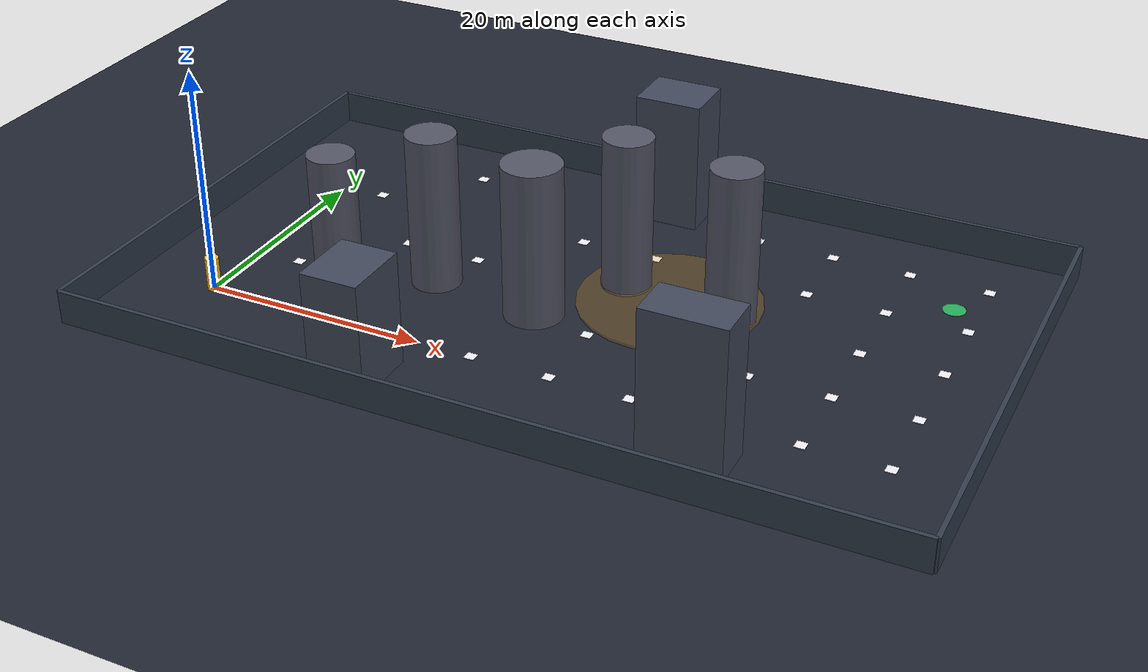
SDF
<?xml version="1.0" ?>
<!-- GENERATED by tools/gen_maps.py -- do not edit by hand. -->
<sdf version="1.6">
  <world name="demo">
    <gravity>0 0 -9.81</gravity>
    <scene><ambient>0.5 0.52 0.55 1</ambient><background>0.62 0.66 0.72 1</background><shadows>true</shadows>
      <fog><color>0.62 0.66 0.72 1</color><type>linear</type><start>16</start><end>90</end><density>0.02</density></fog></scene>
    <light name="sun" type="directional"><cast_shadows>true</cast_shadows><pose>0 0 40 0 0 0</pose>
      <diffuse>0.9 0.9 0.9 1</diffuse><specular>0.2 0.2 0.2 1</specular><direction>-0.4 0.3 -0.9</direction></light>
    <model name="ground"><static>true</static><link name="link">
      <collision name="c"><geometry><plane><normal>0 0 1</normal><size>400 400</size></plane></geometry></collision>
      <visual name="v"><geometry><plane><normal>0 0 1</normal><size>400 400</size></plane></geometry>
      <material><ambient>0.13 0.15 0.2</ambient><diffuse>0.13 0.15 0.2</diffuse></material></visual></link></model>
    <model name="wall_s"><static>true</static><pose>29.000 -10.000 1.500 0 0 0</pose><link name="l"><collision name="c"><geometry><box><size>74.0 0.4 3.0</size></box></geometry></collision><visual name="v"><geometry><box><size>74.0 0.4 3.0</size></box></geometry><material><ambient>0.2 0.24 0.3 1</ambient><diffuse>0.2 0.24 0.3 1</diffuse></material></visual></link></model>
    <model name="wall_n"><static>true</static><pose>29.000 34.000 1.500 0 0 0</pose><link name="l"><collision name="c"><geometry><box><size>74.0 0.4 3.0</size></box></geometry></collision><visual name="v"><geometry><box><size>74.0 0.4 3.0</size></box></geometry><material><ambient>0.2 0.24 0.3 1</ambient><diffuse>0.2 0.24 0.3 1</diffuse></material></visual></link></model>
    <model name="wall_w"><static>true</static><pose>-8.000 12.000 1.500 0 0 0</pose><link name="l"><collision name="c"><geometry><box><size>0.4 44.0 3.0</size></box></geometry></collision><visual name="v"><geometry><box><size>0.4 44.0 3.0</size></box></geometry><material><ambient>0.2 0.24 0.3 1</ambient><diffuse>0.2 0.24 0.3 1</diffuse></material></visual></link></model>
    <model name="wall_e"><static>true</static><pose>66.000 12.000 1.500 0 0 0</pose><link name="l"><collision name="c"><geometry><box><size>0.4 44.0 3.0</size></box></geometry></collision><visual name="v"><geometry><box><size>0.4 44.0 3.0</size></box></geometry><material><ambient>0.2 0.24 0.3 1</ambient><diffuse>0.2 0.24 0.3 1</diffuse></material></visual></link></model>
    <model name="hard_patch"><static>true</static><pose>35.960 14.880 0.03 0 0 0</pose><link name="l"><visual name="v"><geometry><cylinder><radius>8.0</radius><length>0.3</length></cylinder></geometry><material><ambient>0.96 0.62 0.04 0.22</ambient><diffuse>0.96 0.62 0.04 0.22</diffuse></material></visual></link></model>
    <model name="tower0"><static>true</static><pose>41.518 14.582 7.000 0 0 0</pose><link name="l"><collision name="c"><geometry><cylinder><radius>2.2</radius><length>14.0</length></cylinder></geometry></collision><visual name="v"><geometry><cylinder><radius>2.2</radius><length>14.0</length></cylinder></geometry><material><ambient>0.33 0.34 0.4 1</ambient><diffuse>0.33 0.34 0.4 1</diffuse></material></visual></link></model>
    <model name="tower1"><static>true</static><pose>31.409 16.027 7.000 0 0 0</pose><link name="l"><collision name="c"><geometry><cylinder><radius>2.2</radius><length>14.0</length></cylinder></geometry></collision><visual name="v"><geometry><cylinder><radius>2.2</radius><length>14.0</length></cylinder></geometry><material><ambient>0.33 0.34 0.4 1</ambient><diffuse>0.33 0.34 0.4 1</diffuse></material></visual></link></model>
    <model name="tower2"><static>true</static><pose>26.514 8.158 7.000 0 0 0</pose><link name="l"><collision name="c"><geometry><cylinder><radius>2.6</radius><length>14.0</length></cylinder></geometry></collision><visual name="v"><geometry><cylinder><radius>2.6</radius><length>14.0</length></cylinder></geometry><material><ambient>0.33 0.34 0.4 1</ambient><diffuse>0.33 0.34 0.4 1</diffuse></material></visual></link></model>
    <model name="tower3"><static>true</static><pose>16.482 9.418 7.000 0 0 0</pose><link name="l"><collision name="c"><geometry><cylinder><radius>2.2</radius><length>14.0</length></cylinder></geometry></collision><visual name="v"><geometry><cylinder><radius>2.2</radius><length>14.0</length></cylinder></geometry><material><ambient>0.33 0.34 0.4 1</ambient><diffuse>0.33 0.34 0.4 1</diffuse></material></visual></link></model>
    <model name="tower4"><static>true</static><pose>11.128 2.657 7.000 0 0 0</pose><link name="l"><collision name="c"><geometry><cylinder><radius>2.0</radius><length>14.0</length></cylinder></geometry></collision><visual name="v"><geometry><cylinder><radius>2.0</radius><length>14.0</length></cylinder></geometry><material><ambient>0.33 0.34 0.4 1</ambient><diffuse>0.33 0.34 0.4 1</diffuse></material></visual></link></model>
    <model name="building0"><static>true</static><pose>30.000 30.000 6.000 0 0 0</pose><link name="l"><collision name="c"><geometry><box><size>6 5 12</size></box></geometry></collision><visual name="v"><geometry><box><size>6 5 12</size></box></geometry><material><ambient>0.26 0.29 0.36 1</ambient><diffuse>0.26 0.29 0.36 1</diffuse></material></visual></link></model>
    <model name="building1"><static>true</static><pose>18.000 -6.000 5.000 0 0 0</pose><link name="l"><collision name="c"><geometry><box><size>5 6 10</size></box></geometry></collision><visual name="v"><geometry><box><size>5 6 10</size></box></geometry><material><ambient>0.26 0.29 0.36 1</ambient><diffuse>0.26 0.29 0.36 1</diffuse></material></visual></link></model>
    <model name="building2"><static>true</static><pose>46.000 -5.000 6.500 0 0 0</pose><link name="l"><collision name="c"><geometry><box><size>7 4 13</size></box></geometry></collision><visual name="v"><geometry><box><size>7 4 13</size></box></geometry><material><ambient>0.26 0.29 0.36 1</ambient><diffuse>0.26 0.29 0.36 1</diffuse></material></visual></link></model>
    <model name="marker0"><static>true</static><pose>4.000 0.000 0.03 0 0 0</pose><link name="l"><visual name="v"><geometry><box><size>0.9 0.9 0.05</size></box></geometry><material><ambient>0.95 0.95 0.98 1</ambient></material></visual></link></model>
    <model name="marker1"><static>true</static><pose>4.000 7.000 0.03 0 0 0</pose><link name="l"><visual name="v"><geometry><box><size>0.9 0.9 0.05</size></box></geometry><material><ambient>0.95 0.95 0.98 1</ambient></material></visual></link></model>
    <model name="marker2"><static>true</static><pose>4.000 14.000 0.03 0 0 0</pose><link name="l"><visual name="v"><geometry><box><size>0.9 0.9 0.05</size></box></geometry><material><ambient>0.95 0.95 0.98 1</ambient></material></visual></link></model>
    <model name="marker3"><static>true</static><pose>4.000 21.000 0.03 0 0 0</pose><link name="l"><visual name="v"><geometry><box><size>0.9 0.9 0.05</size></box></geometry><material><ambient>0.95 0.95 0.98 1</ambient></material></visual></link></model>
    <model name="marker4"><static>true</static><pose>4.000 28.000 0.03 0 0 0</pose><link name="l"><visual name="v"><geometry><box><size>0.9 0.9 0.05</size></box></geometry><material><ambient>0.95 0.95 0.98 1</ambient></material></visual></link></model>
    <model name="marker5"><static>true</static><pose>11.000 14.000 0.03 0 0 0</pose><link name="l"><visual name="v"><geometry><box><size>0.9 0.9 0.05</size></box></geometry><material><ambient>0.95 0.95 0.98 1</ambient></material></visual></link></model>
    <model name="marker6"><static>true</static><pose>11.000 21.000 0.03 0 0 0</pose><link name="l"><visual name="v"><geometry><box><size>0.9 0.9 0.05</size></box></geometry><material><ambient>0.95 0.95 0.98 1</ambient></material></visual></link></model>
    <model name="marker7"><static>true</static><pose>11.000 28.000 0.03 0 0 0</pose><link name="l"><visual name="v"><geometry><box><size>0.9 0.9 0.05</size></box></geometry><material><ambient>0.95 0.95 0.98 1</ambient></material></visual></link></model>
    <model name="marker8"><static>true</static><pose>18.000 0.000 0.03 0 0 0</pose><link name="l"><visual name="v"><geometry><box><size>0.9 0.9 0.05</size></box></geometry><material><ambient>0.95 0.95 0.98 1</ambient></material></visual></link></model>
    <model name="marker9"><static>true</static><pose>18.000 14.000 0.03 0 0 0</pose><link name="l"><visual name="v"><geometry><box><size>0.9 0.9 0.05</size></box></geometry><material><ambient>0.95 0.95 0.98 1</ambient></material></visual></link></model>
    <model name="marker10"><static>true</static><pose>18.000 21.000 0.03 0 0 0</pose><link name="l"><visual name="v"><geometry><box><size>0.9 0.9 0.05</size></box></geometry><material><ambient>0.95 0.95 0.98 1</ambient></material></visual></link></model>
    <model name="marker11"><static>true</static><pose>18.000 28.000 0.03 0 0 0</pose><link name="l"><visual name="v"><geometry><box><size>0.9 0.9 0.05</size></box></geometry><material><ambient>0.95 0.95 0.98 1</ambient></material></visual></link></model>
    <model name="marker12"><static>true</static><pose>25.000 0.000 0.03 0 0 0</pose><link name="l"><visual name="v"><geometry><box><size>0.9 0.9 0.05</size></box></geometry><material><ambient>0.95 0.95 0.98 1</ambient></material></visual></link></model>
    <model name="marker13"><static>true</static><pose>25.000 14.000 0.03 0 0 0</pose><link name="l"><visual name="v"><geometry><box><size>0.9 0.9 0.05</size></box></geometry><material><ambient>0.95 0.95 0.98 1</ambient></material></visual></link></model>
    <model name="marker14"><static>true</static><pose>25.000 21.000 0.03 0 0 0</pose><link name="l"><visual name="v"><geometry><box><size>0.9 0.9 0.05</size></box></geometry><material><ambient>0.95 0.95 0.98 1</ambient></material></visual></link></model>
    <model name="marker15"><static>true</static><pose>25.000 28.000 0.03 0 0 0</pose><link name="l"><visual name="v"><geometry><box><size>0.9 0.9 0.05</size></box></geometry><material><ambient>0.95 0.95 0.98 1</ambient></material></visual></link></model>
    <model name="marker16"><static>true</static><pose>32.000 0.000 0.03 0 0 0</pose><link name="l"><visual name="v"><geometry><box><size>0.9 0.9 0.05</size></box></geometry><material><ambient>0.95 0.95 0.98 1</ambient></material></visual></link></model>
    <model name="marker17"><static>true</static><pose>32.000 7.000 0.03 0 0 0</pose><link name="l"><visual name="v"><geometry><box><size>0.9 0.9 0.05</size></box></geometry><material><ambient>0.95 0.95 0.98 1</ambient></material></visual></link></model>
    <model name="marker18"><static>true</static><pose>32.000 21.000 0.03 0 0 0</pose><link name="l"><visual name="v"><geometry><box><size>0.9 0.9 0.05</size></box></geometry><material><ambient>0.95 0.95 0.98 1</ambient></material></visual></link></model>
    <model name="marker19"><static>true</static><pose>32.000 28.000 0.03 0 0 0</pose><link name="l"><visual name="v"><geometry><box><size>0.9 0.9 0.05</size></box></geometry><material><ambient>0.95 0.95 0.98 1</ambient></material></visual></link></model>
    <model name="marker20"><static>true</static><pose>39.000 0.000 0.03 0 0 0</pose><link name="l"><visual name="v"><geometry><box><size>0.9 0.9 0.05</size></box></geometry><material><ambient>0.95 0.95 0.98 1</ambient></material></visual></link></model>
    <model name="marker21"><static>true</static><pose>39.000 7.000 0.03 0 0 0</pose><link name="l"><visual name="v"><geometry><box><size>0.9 0.9 0.05</size></box></geometry><material><ambient>0.95 0.95 0.98 1</ambient></material></visual></link></model>
    <model name="marker22"><static>true</static><pose>39.000 21.000 0.03 0 0 0</pose><link name="l"><visual name="v"><geometry><box><size>0.9 0.9 0.05</size></box></geometry><material><ambient>0.95 0.95 0.98 1</ambient></material></visual></link></model>
    <model name="marker23"><static>true</static><pose>39.000 28.000 0.03 0 0 0</pose><link name="l"><visual name="v"><geometry><box><size>0.9 0.9 0.05</size></box></geometry><material><ambient>0.95 0.95 0.98 1</ambient></material></visual></link></model>
    <model name="marker24"><static>true</static><pose>46.000 0.000 0.03 0 0 0</pose><link name="l"><visual name="v"><geometry><box><size>0.9 0.9 0.05</size></box></geometry><material><ambient>0.95 0.95 0.98 1</ambient></material></visual></link></model>
    <model name="marker25"><static>true</static><pose>46.000 7.000 0.03 0 0 0</pose><link name="l"><visual name="v"><geometry><box><size>0.9 0.9 0.05</size></box></geometry><material><ambient>0.95 0.95 0.98 1</ambient></material></visual></link></model>
    <model name="marker26"><static>true</static><pose>46.000 21.000 0.03 0 0 0</pose><link name="l"><visual name="v"><geometry><box><size>0.9 0.9 0.05</size></box></geometry><material><ambient>0.95 0.95 0.98 1</ambient></material></visual></link></model>
    <model name="marker27"><static>true</static><pose>46.000 28.000 0.03 0 0 0</pose><link name="l"><visual name="v"><geometry><box><size>0.9 0.9 0.05</size></box></geometry><material><ambient>0.95 0.95 0.98 1</ambient></material></visual></link></model>
    <model name="marker28"><static>true</static><pose>53.000 0.000 0.03 0 0 0</pose><link name="l"><visual name="v"><geometry><box><size>0.9 0.9 0.05</size></box></geometry><material><ambient>0.95 0.95 0.98 1</ambient></material></visual></link></model>
    <model name="marker29"><static>true</static><pose>53.000 7.000 0.03 0 0 0</pose><link name="l"><visual name="v"><geometry><box><size>0.9 0.9 0.05</size></box></geometry><material><ambient>0.95 0.95 0.98 1</ambient></material></visual></link></model>
    <model name="marker30"><static>true</static><pose>53.000 14.000 0.03 0 0 0</pose><link name="l"><visual name="v"><geometry><box><size>0.9 0.9 0.05</size></box></geometry><material><ambient>0.95 0.95 0.98 1</ambient></material></visual></link></model>
    <model name="marker31"><static>true</static><pose>53.000 21.000 0.03 0 0 0</pose><link name="l"><visual name="v"><geometry><box><size>0.9 0.9 0.05</size></box></geometry><material><ambient>0.95 0.95 0.98 1</ambient></material></visual></link></model>
    <model name="marker32"><static>true</static><pose>53.000 28.000 0.03 0 0 0</pose><link name="l"><visual name="v"><geometry><box><size>0.9 0.9 0.05</size></box></geometry><material><ambient>0.95 0.95 0.98 1</ambient></material></visual></link></model>
    <model name="marker33"><static>true</static><pose>60.000 0.000 0.03 0 0 0</pose><link name="l"><visual name="v"><geometry><box><size>0.9 0.9 0.05</size></box></geometry><material><ambient>0.95 0.95 0.98 1</ambient></material></visual></link></model>
    <model name="marker34"><static>true</static><pose>60.000 7.000 0.03 0 0 0</pose><link name="l"><visual name="v"><geometry><box><size>0.9 0.9 0.05</size></box></geometry><material><ambient>0.95 0.95 0.98 1</ambient></material></visual></link></model>
    <model name="marker35"><static>true</static><pose>60.000 14.000 0.03 0 0 0</pose><link name="l"><visual name="v"><geometry><box><size>0.9 0.9 0.05</size></box></geometry><material><ambient>0.95 0.95 0.98 1</ambient></material></visual></link></model>
    <model name="marker36"><static>true</static><pose>60.000 21.000 0.03 0 0 0</pose><link name="l"><visual name="v"><geometry><box><size>0.9 0.9 0.05</size></box></geometry><material><ambient>0.95 0.95 0.98 1</ambient></material></visual></link></model>
    <model name="marker37"><static>true</static><pose>60.000 28.000 0.03 0 0 0</pose><link name="l"><visual name="v"><geometry><box><size>0.9 0.9 0.05</size></box></geometry><material><ambient>0.95 0.95 0.98 1</ambient></material></visual></link></model>
    <model name="target_B"><static>true</static><pose>0.000 0.000 1.500 0 0 0</pose><link name="l"><collision name="c"><geometry><cylinder><radius>0.6</radius><length>3.0</length></cylinder></geometry></collision><visual name="v"><geometry><cylinder><radius>0.6</radius><length>3.0</length></cylinder></geometry><material><ambient>0.98 0.75 0.14 1</ambient><diffuse>0.98 0.75 0.14 1</diffuse></material></visual></link></model>
    <model name="start_pad"><static>true</static><pose>58.000 24.000 0.020 0 0 0</pose><link name="l"><collision name="c"><geometry><cylinder><radius>1.0</radius><length>0.04</length></cylinder></geometry></collision><visual name="v"><geometry><cylinder><radius>1.0</radius><length>0.04</length></cylinder></geometry><material><ambient>0.2 0.83 0.44 0.85</ambient><diffuse>0.2 0.83 0.44 0.85</diffuse></material></visual></link></model>
    <plugin name="gazebo_ros_state" filename="libgazebo_ros_state.so"><ros><namespace>/gazebo</namespace></ros><update_rate>0.0</update_rate></plugin>
    <physics name="ode" type="ode"><max_step_size>0.004</max_step_size><real_time_update_rate>250</real_time_update_rate></physics>
  </world>
</sdf>
